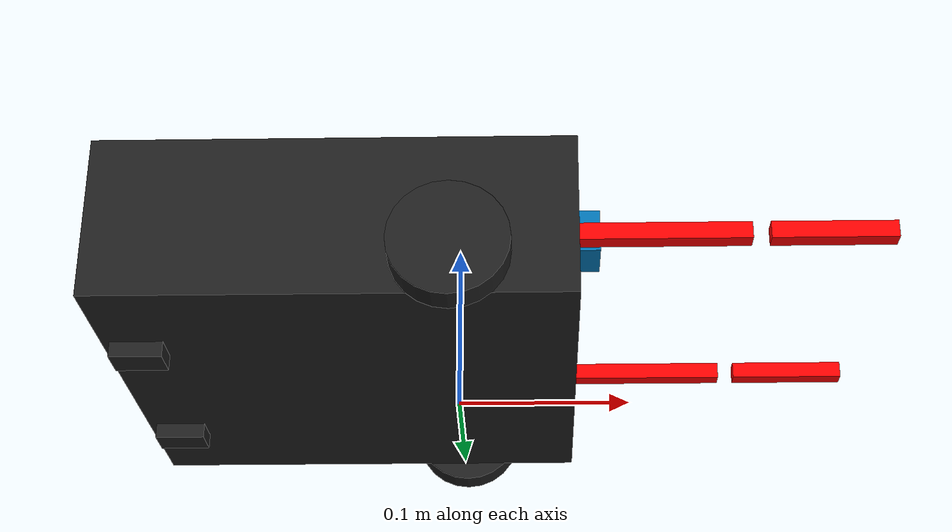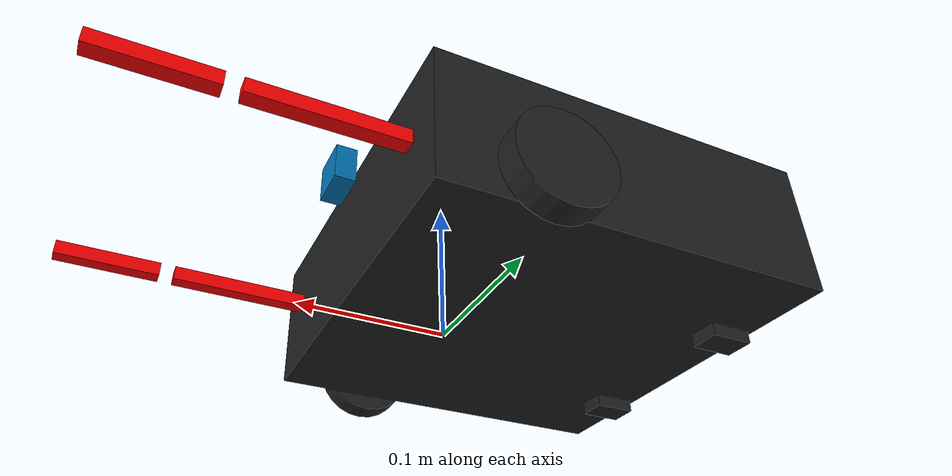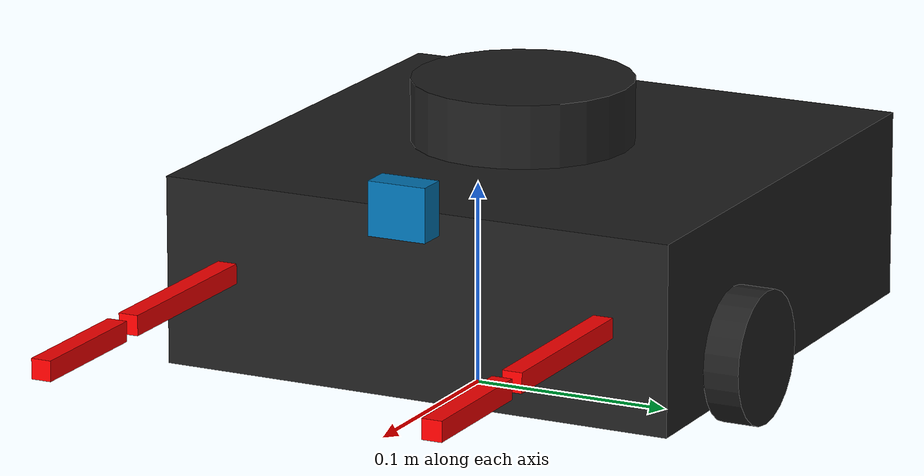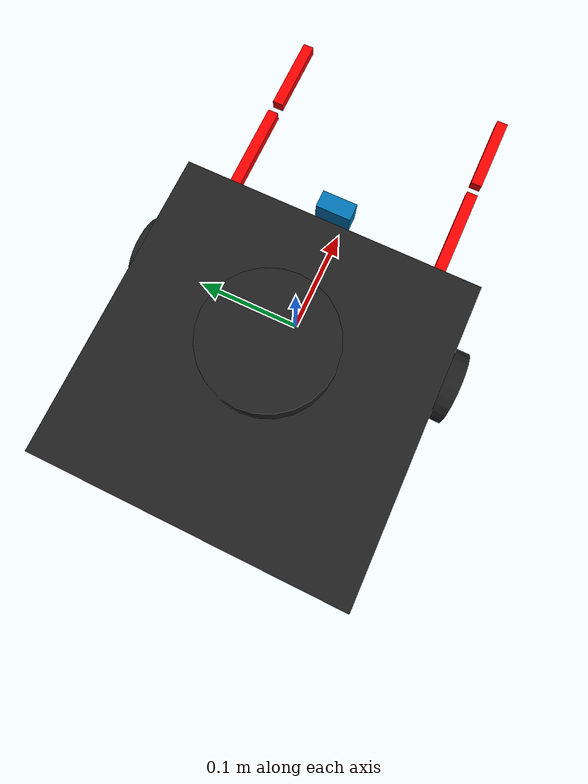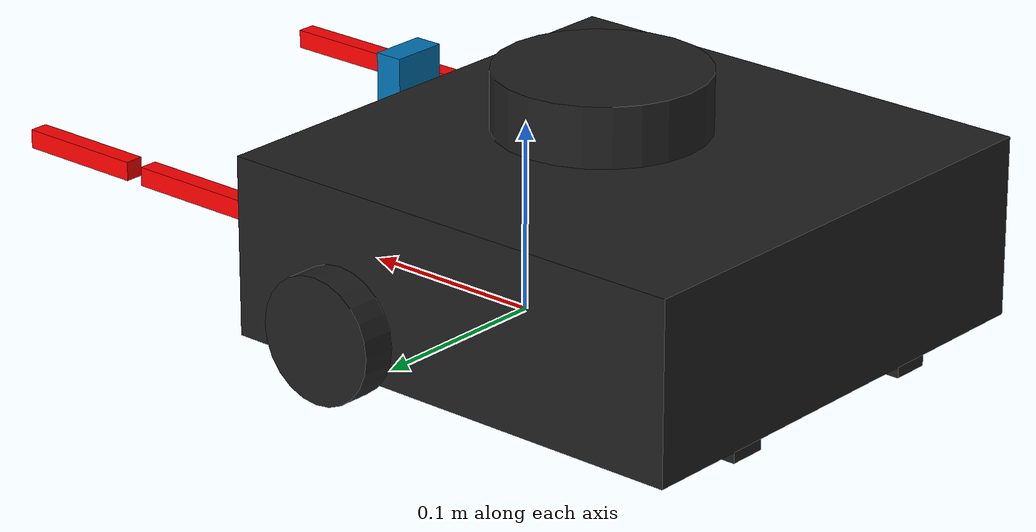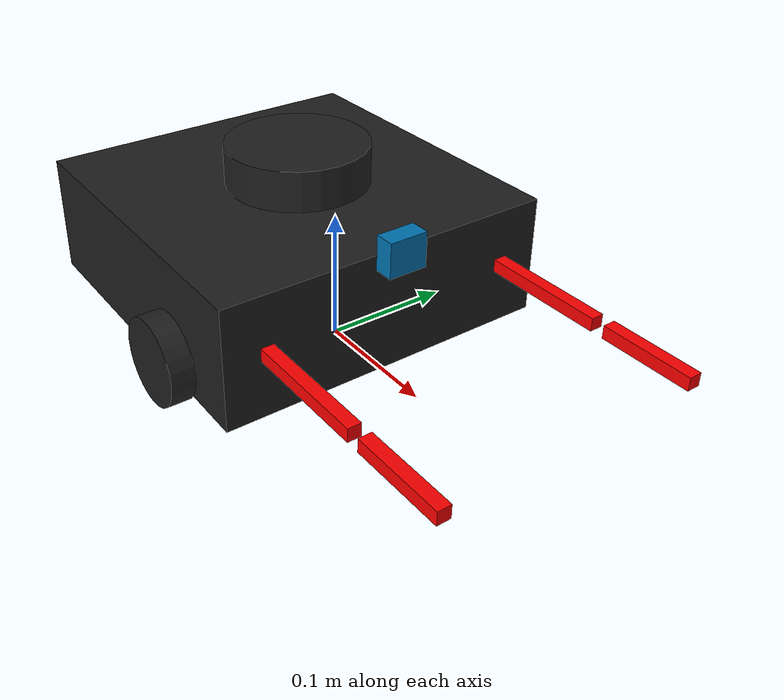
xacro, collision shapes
<?xml version="1.0" ?>
<robot name="turtlebot3_waffle_pi" xmlns:xacro="http://ros.org/wiki/xacro">

  <xacro:include filename="common_properties.xacro"/>
  <xacro:include filename="turtlebot3_waffle_pi.gazebo.xacro"/>

  <link name="base_footprint"/>

  <joint name="base_joint" type="fixed">
    <parent link="base_footprint"/>
    <child link="base_link" />
    <origin xyz="0 0 0.010" rpy="0 0 0"/>
  </joint>

  <link name="base_link">
    <visual>
      <origin xyz="-0.064 0 0.0" rpy="0 0 0"/>
      <geometry>
        <mesh filename="package://turtlebot3_description/meshes/bases/waffle_pi_base.stl" scale="0.001 0.001 0.001"/>
      </geometry>
      <material name="light_black"/>
    </visual>

    <collision>
      <origin xyz="-0.064 0 0.047" rpy="0 0 0"/>
      <geometry>
        <box size="0.266 0.266 0.094"/>
      </geometry>
    </collision>

    <inertial>
      <origin xyz="0 0 0" rpy="0 0 0"/>
      <mass value="1.3729096e+00"/>
      <inertia ixx="8.7002718e-03" ixy="-4.7576583e-05" ixz="1.1160499e-04"
               iyy="8.6195418e-03" iyz="-3.5422299e-06"
               izz="1.4612727e-02" />
    </inertial>
  </link>

<!--   Add new arms  -->

 <joint name="ball_keeper_L_joint" type="fixed">
    <parent link="base_link"/>
    <child link="ball_keeper_L_link"/>
    <origin xyz="0.1 0.1 0.01" rpy="0 0 0"/>
  </joint>

  <link name="ball_keeper_L_link">
    <collision>
      <origin xyz="0 0 0.04" rpy="0 0 0"/>
      <geometry>
        <box size="0.13 0.01 0.01"/>
      </geometry>
    </collision>

    <visual>
      <origin xyz="0 0 0.04" rpy="0 0 0"/>
      <geometry>
        <box size="0.15 0.01 0.01"/>
      </geometry>
      <material name="orange"/>
    </visual>

    <inertial>
      <origin xyz="0 0 0" rpy="0 0 0"/>
      <mass value="0.000008"/>
      <inertia
        ixx="0.001" ixy="0.0" ixz="0.0"
        iyy="0.001" iyz="0.0"
        izz="0.001"/>
    </inertial>
  </link>

  <joint name="crab_hand_L_joint" type="revolute">
    <parent link="ball_keeper_L_link"/>
    <child link="crab_hand_L_link"/>
    <origin xyz="0.07 0 0" rpy="0 0 0"/>
    <axis xyz="0 0 1"/>
    <limit velocity="4.8" effort="1" lower="${-pi*0.9}" upper="${pi*0.9}" />
  </joint>

  <transmission name="trans_crab_hand_L_joint">
      <type>transmission_interface/SimpleTransmission</type>
      <joint name="crab_hand_L_joint">
        <hardwareInterface>hardware_interface/PositionJointInterface</hardwareInterface>
      </joint>
      <actuator name="motor_crab_hand_L_joint">
        <hardwareInterface>hardware_interface/PositionJointInterface</hardwareInterface>
        <mechanicalReduction>1</mechanicalReduction>
      </actuator>
    </transmission>

  <link name="crab_hand_L_link">
    <collision>
      <origin xyz="0.04 0.0 0.04" rpy="0 0 0"/>
      <geometry>
        <box size="0.07 0.01 0.01"/>
      </geometry>
    </collision>

    <visual>
      <origin xyz="0.04 0 0.04" rpy="0 0 0"/>
      <geometry>
        <box size="0.07 0.01 0.01"/>
      </geometry>
      <material name="orange"/>
    </visual>

    <inertial>
      <origin xyz="0 0 0" rpy="0 0 0"/>
      <mass value="0.000008"/>
      <inertia
        ixx="0.001" ixy="0.0" ixz="0.0"
        iyy="0.001" iyz="0.0"
        izz="0.001"/>
    </inertial>
  </link>

 <joint name="ball_keeper_R_joint" type="fixed">
    <parent link="base_link"/>
    <child link="ball_keeper_R_link"/>
    <origin xyz="0.1 -0.1 0.01" rpy="0 0 0"/>
  </joint>

  <link name="ball_keeper_R_link">
    <collision>
      <origin xyz="0 0 0.04" rpy="0 0 0"/>
      <geometry>
        <box size="0.13 0.01 0.01"/>
      </geometry>
    </collision>

    <visual>
      <origin xyz="0 0 0.04" rpy="0 0 0"/>
      <geometry>
        <box size="0.15 0.01 0.01"/>
      </geometry>
      <material name="orange">
		<color rgba="1 0 0 1.0"/>
      </material>
    </visual>

    <inertial>
      <origin xyz="0 0 0" rpy="0 0 0"/>
      <mass value="0.000008"/>
      <inertia
        ixx="0.001" ixy="0.0" ixz="0.0"
        iyy="0.001" iyz="0.0"
        izz="0.001"/>
    </inertial>
  </link>

<joint name="crab_hand_R_joint" type="revolute">
    <parent link="ball_keeper_R_link"/>
    <child link="crab_hand_R_link"/>
    <origin xyz="0.07 0 0" rpy="0 0 0"/>
    <axis xyz="0 0 1"/>
    <limit velocity="4.8" effort="1" lower="${-pi*0.9}" upper="${pi*0.9}" />
  </joint>

  <transmission name="trans_crab_hand_R_joint">
      <type>transmission_interface/SimpleTransmission</type>
      <joint name="crab_hand_R_joint">
        <hardwareInterface>hardware_interface/PositionJointInterface</hardwareInterface>
      </joint>
      <actuator name="motor_crab_hand_R_joint">
        <hardwareInterface>hardware_interface/PositionJointInterface</hardwareInterface>
        <mechanicalReduction>1</mechanicalReduction>
      </actuator>
  </transmission>

  <link name="crab_hand_R_link">
    <collision>
      <origin xyz="0.04 0 0.04" rpy="0 0 0"/>
      <geometry>
        <box size="0.07 0.01 0.01"/>
      </geometry>
    </collision>

    <visual>
      <origin xyz="0.04 0 0.04" rpy="0 0 0"/>
      <geometry>
        <box size="0.07 0.01 0.01"/>
      </geometry>
      <material name="orange"/>
    </visual>

    <inertial>
      <origin xyz="0 0 0" rpy="0 0 0"/>
      <mass value="0.000008"/>
      <inertia
        ixx="0.001" ixy="0.0" ixz="0.0"
        iyy="0.001" iyz="0.0"
        izz="0.001"/>
    </inertial>
  </link>

  <joint name="wheel_left_joint" type="continuous">
    <parent link="base_link"/>
    <child link="wheel_left_link"/>
    <origin xyz="0.0 0.144 0.023" rpy="-1.57 0 0"/>
    <axis xyz="0 0 1"/>
  </joint>

  <link name="wheel_left_link">
    <visual>
      <origin xyz="0 0 0" rpy="1.57 0 0"/>
      <geometry>
        <mesh filename="package://turtlebot3_description/meshes/wheels/left_tire.stl" scale="0.001 0.001 0.001"/>
      </geometry>
      <material name="dark"/>
    </visual>

    <collision>
      <origin xyz="0 0 0" rpy="0 0 0"/>
      <geometry>
        <cylinder length="0.018" radius="0.033"/>
      </geometry>
    </collision>

    <inertial>
      <origin xyz="0 0 0" />
      <mass value="2.8498940e-02" />
      <inertia ixx="1.1175580e-05" ixy="-4.2369783e-11" ixz="-5.9381719e-09"
               iyy="1.1192413e-05" iyz="-1.4400107e-11"
               izz="2.0712558e-05" />
      </inertial>
  </link>

  <joint name="wheel_right_joint" type="continuous">
    <parent link="base_link"/>
    <child link="wheel_right_link"/>
    <origin xyz="0.0 -0.144 0.023" rpy="-1.57 0 0"/>
    <axis xyz="0 0 1"/>
  </joint>

  <link name="wheel_right_link">
    <visual>
      <origin xyz="0 0 0" rpy="1.57 0 0"/>
      <geometry>
        <mesh filename="package://turtlebot3_description/meshes/wheels/right_tire.stl" scale="0.001 0.001 0.001"/>
      </geometry>
      <material name="dark"/>
    </visual>

    <collision>
      <origin xyz="0 0 0" rpy="0 0 0"/>
      <geometry>
        <cylinder length="0.018" radius="0.033"/>
      </geometry>
    </collision>

    <inertial>
      <origin xyz="0 0 0" />
      <mass value="2.8498940e-02" />
      <inertia ixx="1.1175580e-05" ixy="-4.2369783e-11" ixz="-5.9381719e-09"
               iyy="1.1192413e-05" iyz="-1.4400107e-11"
               izz="2.0712558e-05" />
      </inertial>
  </link>

  <joint name="caster_back_right_joint" type="fixed">
    <parent link="base_link"/>
    <child link="caster_back_right_link"/>
    <origin xyz="-0.177 -0.064 -0.004" rpy="-1.57 0 0"/>
  </joint>

  <link name="caster_back_right_link">
    <collision>
      <origin xyz="0 0.001 0" rpy="0 0 0"/>
      <geometry>
        <box size="0.030 0.009 0.020"/>
      </geometry>
    </collision>

    <inertial>
      <origin xyz="0 0 0" />
      <mass value="0.005" />
      <inertia ixx="0.001" ixy="0.0" ixz="0.0"
               iyy="0.001" iyz="0.0"
               izz="0.001" />
    </inertial>
  </link>

  <joint name="caster_back_left_joint" type="fixed">
    <parent link="base_link"/>
    <child link="caster_back_left_link"/>
    <origin xyz="-0.177 0.064 -0.004" rpy="-1.57 0 0"/>
  </joint>

  <link name="caster_back_left_link">
    <collision>
      <origin xyz="0 0.001 0" rpy="0 0 0"/>
      <geometry>
        <box size="0.030 0.009 0.020"/>
      </geometry>
    </collision>

    <inertial>
      <origin xyz="0 0 0" />
      <mass value="0.005" />
      <inertia ixx="0.001" ixy="0.0" ixz="0.0"
               iyy="0.001" iyz="0.0"
               izz="0.001" />
    </inertial>
  </link>

  <joint name="imu_joint" type="fixed">
    <parent link="base_link"/>
    <child link="imu_link"/>
    <origin xyz="0.0 0 0.068" rpy="0 0 0"/>
  </joint>

  <link name="imu_link"/>

  <joint name="scan_joint" type="fixed">
    <parent link="base_link"/>
    <child link="base_scan"/>
    <origin xyz="-0.064 0 0.122" rpy="0 0 0"/>
  </joint>

  <link name="base_scan">
    <visual>
      <origin xyz="0 0 0.0" rpy="0 0 0"/>
      <geometry>
        <mesh filename="package://turtlebot3_description/meshes/sensors/lds.stl" scale="0.001 0.001 0.001"/>
      </geometry>
      <material name="dark"/>
    </visual>

    <collision>
      <origin xyz="0.015 0 -0.0065" rpy="0 0 0"/>
      <geometry>
        <cylinder length="0.0315" radius="0.055"/>
      </geometry>
    </collision>

    <inertial>
      <mass value="0.114" />
      <origin xyz="0 0 0" />
      <inertia ixx="0.001" ixy="0.0" ixz="0.0"
               iyy="0.001" iyz="0.0"
               izz="0.001" />
    </inertial>
  </link>

  <joint name="camera_joint" type="fixed">
    <origin xyz="0.073 -0.011 0.084" rpy="0 0 0"/>
    <parent link="base_link"/>
    <child link="camera_link"/>
  </joint>

  <link name="camera_link">
    <collision>
      <origin xyz="0.005 0.011 0.013" rpy="0 0 0"/>
      <geometry>
        <box size="0.015 0.030 0.027"/>
      </geometry>
    </collision>
  </link>

  <joint name="camera_rgb_joint" type="fixed">
    <origin xyz="0.003 0.011 0.009" rpy="0 0 0"/>
    <parent link="camera_link"/>
    <child link="camera_rgb_frame"/>
  </joint>
  <link name="camera_rgb_frame"/>

  <joint name="camera_rgb_optical_joint" type="fixed">
    <origin xyz="0 0 0" rpy="-1.57 0 -1.57"/>
    <parent link="camera_rgb_frame"/>
    <child link="camera_rgb_optical_frame"/>
  </joint>
  <link name="camera_rgb_optical_frame"/>

</robot>
